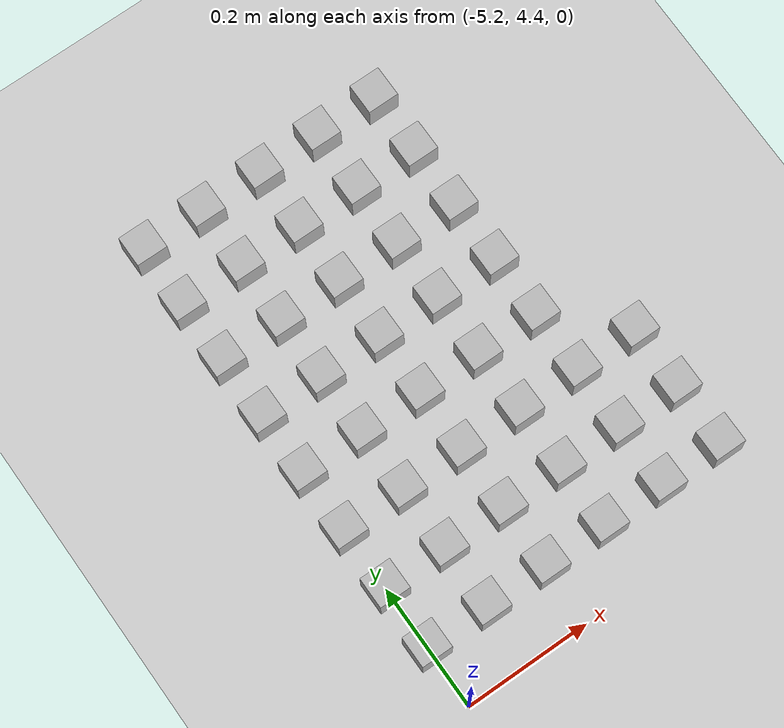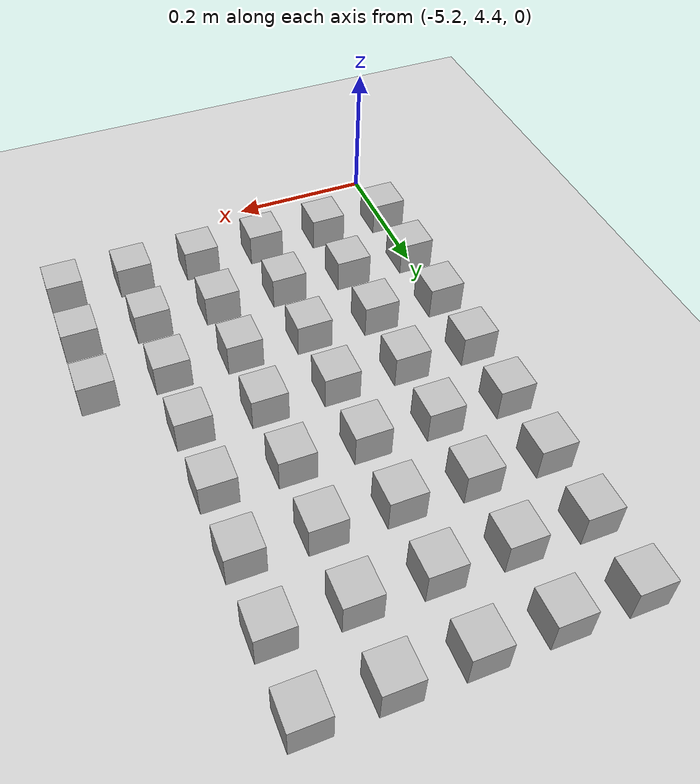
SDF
<sdf version="1.6">
 <world name="default">
  <model name="ground_plane">
   <static>1</static>
   <link name="link">
    <collision name="collision">
     <geometry><plane><normal>0 0 1</normal><size>100 100</size></plane></geometry>
     <surface><friction><ode><mu>100</mu><mu2>50</mu2></ode></friction></surface>
    </collision>
    <visual name="visual">
     <cast_shadows>0</cast_shadows>
     <geometry><plane><normal>0 0 1</normal><size>100 100</size></plane></geometry>
     <material>
      <script><uri>file://media/materials/scripts/gazebo.material</uri><name>Gazebo/Grey</name></script>
     </material>
    </visual>
   </link>
  </model>
  <model name="at0">
   <static>0</static>
   <link name="link">
    <inertial>
     <mass>0.01</mass>
     <inertia><ixx>4e-05</ixx><ixy>0</ixy><ixz>0</ixz><iyy>4e-05</iyy><iyz>0</iyz><izz>4e-05</izz></inertia>
    </inertial>
    <visual name="visual">
     <geometry><box><size>0.05 0.05 0.05</size></box></geometry>
     <material>
      <script>
       <uri>model://at0/materials/scripts</uri>
       <uri>model://at0/materials/textures</uri>
       <name>at0/Diffuse</name>
      </script>
     </material>
    </visual>
    <collision name="collision">
     <geometry><box><size>0.05 0.05 0.05</size></box></geometry>
     <surface><friction><ode><mu>0.8</mu><mu2>0.7</mu2></ode></friction></surface>
    </collision>
   </link>
   <pose>-5.2 4.5 0.025 0 -0 0</pose>
  </model>
  <model name="at1">
   <static>0</static>
   <link name="link">
    <inertial>
     <mass>0.01</mass>
     <inertia><ixx>4e-05</ixx><ixy>0</ixy><ixz>0</ixz><iyy>4e-05</iyy><iyz>0</iyz><izz>4e-05</izz></inertia>
    </inertial>
    <visual name="visual">
     <geometry><box><size>0.05 0.05 0.05</size></box></geometry>
     <material>
      <script>
       <uri>model://at0/materials/scripts</uri>
       <uri>model://at0/materials/textures</uri>
       <name>at0/Diffuse</name>
      </script>
     </material>
    </visual>
    <collision name="collision">
     <geometry><box><size>0.05 0.05 0.05</size></box></geometry>
     <surface><friction><ode><mu>0.8</mu><mu2>0.7</mu2></ode></friction></surface>
    </collision>
   </link>
   <pose>-5.1 4.5 0.025 0 -0 0</pose>
  </model>
  <model name="at2">
   <static>0</static>
   <link name="link">
    <inertial>
     <mass>0.01</mass>
     <inertia><ixx>4e-05</ixx><ixy>0</ixy><ixz>0</ixz><iyy>4e-05</iyy><iyz>0</iyz><izz>4e-05</izz></inertia>
    </inertial>
    <visual name="visual">
     <geometry><box><size>0.05 0.05 0.05</size></box></geometry>
     <material>
      <script>
       <uri>model://at0/materials/scripts</uri>
       <uri>model://at0/materials/textures</uri>
       <name>at0/Diffuse</name>
      </script>
     </material>
    </visual>
    <collision name="collision">
     <geometry><box><size>0.05 0.05 0.05</size></box></geometry>
     <surface><friction><ode><mu>0.8</mu><mu2>0.7</mu2></ode></friction></surface>
    </collision>
   </link>
   <pose>-5.0 4.5 0.025 0 -0 0</pose>
  </model>
  <model name="at3">
   <static>0</static>
   <link name="link">
    <inertial>
     <mass>0.01</mass>
     <inertia><ixx>4e-05</ixx><ixy>0</ixy><ixz>0</ixz><iyy>4e-05</iyy><iyz>0</iyz><izz>4e-05</izz></inertia>
    </inertial>
    <visual name="visual">
     <geometry><box><size>0.05 0.05 0.05</size></box></geometry>
     <material>
      <script>
       <uri>model://at0/materials/scripts</uri>
       <uri>model://at0/materials/textures</uri>
       <name>at0/Diffuse</name>
      </script>
     </material>
    </visual>
    <collision name="collision">
     <geometry><box><size>0.05 0.05 0.05</size></box></geometry>
     <surface><friction><ode><mu>0.8</mu><mu2>0.7</mu2></ode></friction></surface>
    </collision>
   </link>
   <pose>-4.9 4.5 0.025 0 -0 0</pose>
  </model>
  <model name="at4">
   <static>0</static>
   <link name="link">
    <inertial>
     <mass>0.01</mass>
     <inertia><ixx>4e-05</ixx><ixy>0</ixy><ixz>0</ixz><iyy>4e-05</iyy><iyz>0</iyz><izz>4e-05</izz></inertia>
    </inertial>
    <visual name="visual">
     <geometry><box><size>0.05 0.05 0.05</size></box></geometry>
     <material>
      <script>
       <uri>model://at0/materials/scripts</uri>
       <uri>model://at0/materials/textures</uri>
       <name>at0/Diffuse</name>
      </script>
     </material>
    </visual>
    <collision name="collision">
     <geometry><box><size>0.05 0.05 0.05</size></box></geometry>
     <surface><friction><ode><mu>0.8</mu><mu2>0.7</mu2></ode></friction></surface>
    </collision>
   </link>
   <pose>-4.8 4.5 0.025 0 -0 0</pose>
  </model>
  <model name="at5">
   <static>0</static>
   <link name="link">
    <inertial>
     <mass>0.01</mass>
     <inertia><ixx>4e-05</ixx><ixy>0</ixy><ixz>0</ixz><iyy>4e-05</iyy><iyz>0</iyz><izz>4e-05</izz></inertia>
    </inertial>
    <visual name="visual">
     <geometry><box><size>0.05 0.05 0.05</size></box></geometry>
     <material>
      <script>
       <uri>model://at0/materials/scripts</uri>
       <uri>model://at0/materials/textures</uri>
       <name>at0/Diffuse</name>
      </script>
     </material>
    </visual>
    <collision name="collision">
     <geometry><box><size>0.05 0.05 0.05</size></box></geometry>
     <surface><friction><ode><mu>0.8</mu><mu2>0.7</mu2></ode></friction></surface>
    </collision>
   </link>
   <pose>-4.7 4.5 0.025 0 -0 0</pose>
  </model>
  <model name="at8">
   <static>0</static>
   <link name="link">
    <inertial>
     <mass>0.01</mass>
     <inertia><ixx>4e-05</ixx><ixy>0</ixy><ixz>0</ixz><iyy>4e-05</iyy><iyz>0</iyz><izz>4e-05</izz></inertia>
    </inertial>
    <visual name="visual">
     <geometry><box><size>0.05 0.05 0.05</size></box></geometry>
     <material>
      <script>
       <uri>model://at0/materials/scripts</uri>
       <uri>model://at0/materials/textures</uri>
       <name>at0/Diffuse</name>
      </script>
     </material>
    </visual>
    <collision name="collision">
     <geometry><box><size>0.05 0.05 0.05</size></box></geometry>
     <surface><friction><ode><mu>0.8</mu><mu2>0.7</mu2></ode></friction></surface>
    </collision>
   </link>
   <pose>-5.2 4.6 0.025 0 -0 0</pose>
  </model>
  <model name="at9">
   <static>0</static>
   <link name="link">
    <inertial>
     <mass>0.01</mass>
     <inertia><ixx>4e-05</ixx><ixy>0</ixy><ixz>0</ixz><iyy>4e-05</iyy><iyz>0</iyz><izz>4e-05</izz></inertia>
    </inertial>
    <visual name="visual">
     <geometry><box><size>0.05 0.05 0.05</size></box></geometry>
     <material>
      <script>
       <uri>model://at0/materials/scripts</uri>
       <uri>model://at0/materials/textures</uri>
       <name>at0/Diffuse</name>
      </script>
     </material>
    </visual>
    <collision name="collision">
     <geometry><box><size>0.05 0.05 0.05</size></box></geometry>
     <surface><friction><ode><mu>0.8</mu><mu2>0.7</mu2></ode></friction></surface>
    </collision>
   </link>
   <pose>-5.1 4.6 0.025 0 -0 0</pose>
  </model>
  <model name="at10">
   <static>0</static>
   <link name="link">
    <inertial>
     <mass>0.01</mass>
     <inertia><ixx>4e-05</ixx><ixy>0</ixy><ixz>0</ixz><iyy>4e-05</iyy><iyz>0</iyz><izz>4e-05</izz></inertia>
    </inertial>
    <visual name="visual">
     <geometry><box><size>0.05 0.05 0.05</size></box></geometry>
     <material>
      <script>
       <uri>model://at0/materials/scripts</uri>
       <uri>model://at0/materials/textures</uri>
       <name>at0/Diffuse</name>
      </script>
     </material>
    </visual>
    <collision name="collision">
     <geometry><box><size>0.05 0.05 0.05</size></box></geometry>
     <surface><friction><ode><mu>0.8</mu><mu2>0.7</mu2></ode></friction></surface>
    </collision>
   </link>
   <pose>-5.0 4.6 0.025 0 -0 0</pose>
  </model>
  <model name="at11">
   <static>0</static>
   <link name="link">
    <inertial>
     <mass>0.01</mass>
     <inertia><ixx>4e-05</ixx><ixy>0</ixy><ixz>0</ixz><iyy>4e-05</iyy><iyz>0</iyz><izz>4e-05</izz></inertia>
    </inertial>
    <visual name="visual">
     <geometry><box><size>0.05 0.05 0.05</size></box></geometry>
     <material>
      <script>
       <uri>model://at0/materials/scripts</uri>
       <uri>model://at0/materials/textures</uri>
       <name>at0/Diffuse</name>
      </script>
     </material>
    </visual>
    <collision name="collision">
     <geometry><box><size>0.05 0.05 0.05</size></box></geometry>
     <surface><friction><ode><mu>0.8</mu><mu2>0.7</mu2></ode></friction></surface>
    </collision>
   </link>
   <pose>-4.9 4.6 0.025 0 -0 0</pose>
  </model>
  <model name="at12">
   <static>0</static>
   <link name="link">
    <inertial>
     <mass>0.01</mass>
     <inertia><ixx>4e-05</ixx><ixy>0</ixy><ixz>0</ixz><iyy>4e-05</iyy><iyz>0</iyz><izz>4e-05</izz></inertia>
    </inertial>
    <visual name="visual">
     <geometry><box><size>0.05 0.05 0.05</size></box></geometry>
     <material>
      <script>
       <uri>model://at0/materials/scripts</uri>
       <uri>model://at0/materials/textures</uri>
       <name>at0/Diffuse</name>
      </script>
     </material>
    </visual>
    <collision name="collision">
     <geometry><box><size>0.05 0.05 0.05</size></box></geometry>
     <surface><friction><ode><mu>0.8</mu><mu2>0.7</mu2></ode></friction></surface>
    </collision>
   </link>
   <pose>-4.8 4.6 0.025 0 -0 0</pose>
  </model>
  <model name="at13">
   <static>0</static>
   <link name="link">
    <inertial>
     <mass>0.01</mass>
     <inertia><ixx>4e-05</ixx><ixy>0</ixy><ixz>0</ixz><iyy>4e-05</iyy><iyz>0</iyz><izz>4e-05</izz></inertia>
    </inertial>
    <visual name="visual">
     <geometry><box><size>0.05 0.05 0.05</size></box></geometry>
     <material>
      <script>
       <uri>model://at0/materials/scripts</uri>
       <uri>model://at0/materials/textures</uri>
       <name>at0/Diffuse</name>
      </script>
     </material>
    </visual>
    <collision name="collision">
     <geometry><box><size>0.05 0.05 0.05</size></box></geometry>
     <surface><friction><ode><mu>0.8</mu><mu2>0.7</mu2></ode></friction></surface>
    </collision>
   </link>
   <pose>-4.7 4.6 0.025 0 -0 0</pose>
  </model>
  <model name="at16">
   <static>0</static>
   <link name="link">
    <inertial>
     <mass>0.01</mass>
     <inertia><ixx>4e-05</ixx><ixy>0</ixy><ixz>0</ixz><iyy>4e-05</iyy><iyz>0</iyz><izz>4e-05</izz></inertia>
    </inertial>
    <visual name="visual">
     <geometry><box><size>0.05 0.05 0.05</size></box></geometry>
     <material>
      <script>
       <uri>model://at0/materials/scripts</uri>
       <uri>model://at0/materials/textures</uri>
       <name>at0/Diffuse</name>
      </script>
     </material>
    </visual>
    <collision name="collision">
     <geometry><box><size>0.05 0.05 0.05</size></box></geometry>
     <surface><friction><ode><mu>0.8</mu><mu2>0.7</mu2></ode></friction></surface>
    </collision>
   </link>
   <pose>-5.2 4.7 0.025 0 -0 0</pose>
  </model>
  <model name="at17">
   <static>0</static>
   <link name="link">
    <inertial>
     <mass>0.01</mass>
     <inertia><ixx>4e-05</ixx><ixy>0</ixy><ixz>0</ixz><iyy>4e-05</iyy><iyz>0</iyz><izz>4e-05</izz></inertia>
    </inertial>
    <visual name="visual">
     <geometry><box><size>0.05 0.05 0.05</size></box></geometry>
     <material>
      <script>
       <uri>model://at0/materials/scripts</uri>
       <uri>model://at0/materials/textures</uri>
       <name>at0/Diffuse</name>
      </script>
     </material>
    </visual>
    <collision name="collision">
     <geometry><box><size>0.05 0.05 0.05</size></box></geometry>
     <surface><friction><ode><mu>0.8</mu><mu2>0.7</mu2></ode></friction></surface>
    </collision>
   </link>
   <pose>-5.1 4.7 0.025 0 -0 0</pose>
  </model>
  <model name="at18">
   <static>0</static>
   <link name="link">
    <inertial>
     <mass>0.01</mass>
     <inertia><ixx>4e-05</ixx><ixy>0</ixy><ixz>0</ixz><iyy>4e-05</iyy><iyz>0</iyz><izz>4e-05</izz></inertia>
    </inertial>
    <visual name="visual">
     <geometry><box><size>0.05 0.05 0.05</size></box></geometry>
     <material>
      <script>
       <uri>model://at0/materials/scripts</uri>
       <uri>model://at0/materials/textures</uri>
       <name>at0/Diffuse</name>
      </script>
     </material>
    </visual>
    <collision name="collision">
     <geometry><box><size>0.05 0.05 0.05</size></box></geometry>
     <surface><friction><ode><mu>0.8</mu><mu2>0.7</mu2></ode></friction></surface>
    </collision>
   </link>
   <pose>-5.0 4.7 0.025 0 -0 0</pose>
  </model>
  <model name="at19">
   <static>0</static>
   <link name="link">
    <inertial>
     <mass>0.01</mass>
     <inertia><ixx>4e-05</ixx><ixy>0</ixy><ixz>0</ixz><iyy>4e-05</iyy><iyz>0</iyz><izz>4e-05</izz></inertia>
    </inertial>
    <visual name="visual">
     <geometry><box><size>0.05 0.05 0.05</size></box></geometry>
     <material>
      <script>
       <uri>model://at0/materials/scripts</uri>
       <uri>model://at0/materials/textures</uri>
       <name>at0/Diffuse</name>
      </script>
     </material>
    </visual>
    <collision name="collision">
     <geometry><box><size>0.05 0.05 0.05</size></box></geometry>
     <surface><friction><ode><mu>0.8</mu><mu2>0.7</mu2></ode></friction></surface>
    </collision>
   </link>
   <pose>-4.9 4.7 0.025 0 -0 0</pose>
  </model>
  <model name="at20">
   <static>0</static>
   <link name="link">
    <inertial>
     <mass>0.01</mass>
     <inertia><ixx>4e-05</ixx><ixy>0</ixy><ixz>0</ixz><iyy>4e-05</iyy><iyz>0</iyz><izz>4e-05</izz></inertia>
    </inertial>
    <visual name="visual">
     <geometry><box><size>0.05 0.05 0.05</size></box></geometry>
     <material>
      <script>
       <uri>model://at0/materials/scripts</uri>
       <uri>model://at0/materials/textures</uri>
       <name>at0/Diffuse</name>
      </script>
     </material>
    </visual>
    <collision name="collision">
     <geometry><box><size>0.05 0.05 0.05</size></box></geometry>
     <surface><friction><ode><mu>0.8</mu><mu2>0.7</mu2></ode></friction></surface>
    </collision>
   </link>
   <pose>-4.8 4.7 0.025 0 -0 0</pose>
  </model>
  <model name="at21">
   <static>0</static>
   <link name="link">
    <inertial>
     <mass>0.01</mass>
     <inertia><ixx>4e-05</ixx><ixy>0</ixy><ixz>0</ixz><iyy>4e-05</iyy><iyz>0</iyz><izz>4e-05</izz></inertia>
    </inertial>
    <visual name="visual">
     <geometry><box><size>0.05 0.05 0.05</size></box></geometry>
     <material>
      <script>
       <uri>model://at0/materials/scripts</uri>
       <uri>model://at0/materials/textures</uri>
       <name>at0/Diffuse</name>
      </script>
     </material>
    </visual>
    <collision name="collision">
     <geometry><box><size>0.05 0.05 0.05</size></box></geometry>
     <surface><friction><ode><mu>0.8</mu><mu2>0.7</mu2></ode></friction></surface>
    </collision>
   </link>
   <pose>-4.7 4.7 0.025 0 -0 0</pose>
  </model>
  <model name="at24">
   <static>0</static>
   <link name="link">
    <inertial>
     <mass>0.01</mass>
     <inertia><ixx>4e-05</ixx><ixy>0</ixy><ixz>0</ixz><iyy>4e-05</iyy><iyz>0</iyz><izz>4e-05</izz></inertia>
    </inertial>
    <visual name="visual">
     <geometry><box><size>0.05 0.05 0.05</size></box></geometry>
     <material>
      <script>
       <uri>model://at0/materials/scripts</uri>
       <uri>model://at0/materials/textures</uri>
       <name>at0/Diffuse</name>
      </script>
     </material>
    </visual>
    <collision name="collision">
     <geometry><box><size>0.05 0.05 0.05</size></box></geometry>
     <surface><friction><ode><mu>0.8</mu><mu2>0.7</mu2></ode></friction></surface>
    </collision>
   </link>
   <pose>-5.2 4.8 0.025 0 -0 0</pose>
  </model>
  <model name="at25">
   <static>0</static>
   <link name="link">
    <inertial>
     <mass>0.01</mass>
     <inertia><ixx>4e-05</ixx><ixy>0</ixy><ixz>0</ixz><iyy>4e-05</iyy><iyz>0</iyz><izz>4e-05</izz></inertia>
    </inertial>
    <visual name="visual">
     <geometry><box><size>0.05 0.05 0.05</size></box></geometry>
     <material>
      <script>
       <uri>model://at0/materials/scripts</uri>
       <uri>model://at0/materials/textures</uri>
       <name>at0/Diffuse</name>
      </script>
     </material>
    </visual>
    <collision name="collision">
     <geometry><box><size>0.05 0.05 0.05</size></box></geometry>
     <surface><friction><ode><mu>0.8</mu><mu2>0.7</mu2></ode></friction></surface>
    </collision>
   </link>
   <pose>-5.1 4.8 0.025 0 -0 0</pose>
  </model>
  <model name="at26">
   <static>0</static>
   <link name="link">
    <inertial>
     <mass>0.01</mass>
     <inertia><ixx>4e-05</ixx><ixy>0</ixy><ixz>0</ixz><iyy>4e-05</iyy><iyz>0</iyz><izz>4e-05</izz></inertia>
    </inertial>
    <visual name="visual">
     <geometry><box><size>0.05 0.05 0.05</size></box></geometry>
     <material>
      <script>
       <uri>model://at0/materials/scripts</uri>
       <uri>model://at0/materials/textures</uri>
       <name>at0/Diffuse</name>
      </script>
     </material>
    </visual>
    <collision name="collision">
     <geometry><box><size>0.05 0.05 0.05</size></box></geometry>
     <surface><friction><ode><mu>0.8</mu><mu2>0.7</mu2></ode></friction></surface>
    </collision>
   </link>
   <pose>-5.0 4.8 0.025 0 -0 0</pose>
  </model>
  <model name="at27">
   <static>0</static>
   <link name="link">
    <inertial>
     <mass>0.01</mass>
     <inertia><ixx>4e-05</ixx><ixy>0</ixy><ixz>0</ixz><iyy>4e-05</iyy><iyz>0</iyz><izz>4e-05</izz></inertia>
    </inertial>
    <visual name="visual">
     <geometry><box><size>0.05 0.05 0.05</size></box></geometry>
     <material>
      <script>
       <uri>model://at0/materials/scripts</uri>
       <uri>model://at0/materials/textures</uri>
       <name>at0/Diffuse</name>
      </script>
     </material>
    </visual>
    <collision name="collision">
     <geometry><box><size>0.05 0.05 0.05</size></box></geometry>
     <surface><friction><ode><mu>0.8</mu><mu2>0.7</mu2></ode></friction></surface>
    </collision>
   </link>
   <pose>-4.9 4.8 0.025 0 -0 0</pose>
  </model>
  <model name="at28">
   <static>0</static>
   <link name="link">
    <inertial>
     <mass>0.01</mass>
     <inertia><ixx>4e-05</ixx><ixy>0</ixy><ixz>0</ixz><iyy>4e-05</iyy><iyz>0</iyz><izz>4e-05</izz></inertia>
    </inertial>
    <visual name="visual">
     <geometry><box><size>0.05 0.05 0.05</size></box></geometry>
     <material>
      <script>
       <uri>model://at0/materials/scripts</uri>
       <uri>model://at0/materials/textures</uri>
       <name>at0/Diffuse</name>
      </script>
     </material>
    </visual>
    <collision name="collision">
     <geometry><box><size>0.05 0.05 0.05</size></box></geometry>
     <surface><friction><ode><mu>0.8</mu><mu2>0.7</mu2></ode></friction></surface>
    </collision>
   </link>
   <pose>-4.8 4.8 0.025 0 -0 0</pose>
  </model>
  <model name="at32">
   <static>0</static>
   <link name="link">
    <inertial>
     <mass>0.01</mass>
     <inertia><ixx>4e-05</ixx><ixy>0</ixy><ixz>0</ixz><iyy>4e-05</iyy><iyz>0</iyz><izz>4e-05</izz></inertia>
    </inertial>
    <visual name="visual">
     <geometry><box><size>0.05 0.05 0.05</size></box></geometry>
     <material>
      <script>
       <uri>model://at0/materials/scripts</uri>
       <uri>model://at0/materials/textures</uri>
       <name>at0/Diffuse</name>
      </script>
     </material>
    </visual>
    <collision name="collision">
     <geometry><box><size>0.05 0.05 0.05</size></box></geometry>
     <surface><friction><ode><mu>0.8</mu><mu2>0.7</mu2></ode></friction></surface>
    </collision>
   </link>
   <pose>-5.2 4.9 0.025 0 -0 0</pose>
  </model>
  <model name="at33">
   <static>0</static>
   <link name="link">
    <inertial>
     <mass>0.01</mass>
     <inertia><ixx>4e-05</ixx><ixy>0</ixy><ixz>0</ixz><iyy>4e-05</iyy><iyz>0</iyz><izz>4e-05</izz></inertia>
    </inertial>
    <visual name="visual">
     <geometry><box><size>0.05 0.05 0.05</size></box></geometry>
     <material>
      <script>
       <uri>model://at0/materials/scripts</uri>
       <uri>model://at0/materials/textures</uri>
       <name>at0/Diffuse</name>
      </script>
     </material>
    </visual>
    <collision name="collision">
     <geometry><box><size>0.05 0.05 0.05</size></box></geometry>
     <surface><friction><ode><mu>0.8</mu><mu2>0.7</mu2></ode></friction></surface>
    </collision>
   </link>
   <pose>-5.1 4.9 0.025 0 -0 0</pose>
  </model>
  <model name="at34">
   <static>0</static>
   <link name="link">
    <inertial>
     <mass>0.01</mass>
     <inertia><ixx>4e-05</ixx><ixy>0</ixy><ixz>0</ixz><iyy>4e-05</iyy><iyz>0</iyz><izz>4e-05</izz></inertia>
    </inertial>
    <visual name="visual">
     <geometry><box><size>0.05 0.05 0.05</size></box></geometry>
     <material>
      <script>
       <uri>model://at0/materials/scripts</uri>
       <uri>model://at0/materials/textures</uri>
       <name>at0/Diffuse</name>
      </script>
     </material>
    </visual>
    <collision name="collision">
     <geometry><box><size>0.05 0.05 0.05</size></box></geometry>
     <surface><friction><ode><mu>0.8</mu><mu2>0.7</mu2></ode></friction></surface>
    </collision>
   </link>
   <pose>-5.0 4.9 0.025 0 -0 0</pose>
  </model>
  <model name="at35">
   <static>0</static>
   <link name="link">
    <inertial>
     <mass>0.01</mass>
     <inertia><ixx>4e-05</ixx><ixy>0</ixy><ixz>0</ixz><iyy>4e-05</iyy><iyz>0</iyz><izz>4e-05</izz></inertia>
    </inertial>
    <visual name="visual">
     <geometry><box><size>0.05 0.05 0.05</size></box></geometry>
     <material>
      <script>
       <uri>model://at0/materials/scripts</uri>
       <uri>model://at0/materials/textures</uri>
       <name>at0/Diffuse</name>
      </script>
     </material>
    </visual>
    <collision name="collision">
     <geometry><box><size>0.05 0.05 0.05</size></box></geometry>
     <surface><friction><ode><mu>0.8</mu><mu2>0.7</mu2></ode></friction></surface>
    </collision>
   </link>
   <pose>-4.9 4.9 0.025 0 -0 0</pose>
  </model>
  <model name="at36">
   <static>0</static>
   <link name="link">
    <inertial>
     <mass>0.01</mass>
     <inertia><ixx>4e-05</ixx><ixy>0</ixy><ixz>0</ixz><iyy>4e-05</iyy><iyz>0</iyz><izz>4e-05</izz></inertia>
    </inertial>
    <visual name="visual">
     <geometry><box><size>0.05 0.05 0.05</size></box></geometry>
     <material>
      <script>
       <uri>model://at0/materials/scripts</uri>
       <uri>model://at0/materials/textures</uri>
       <name>at0/Diffuse</name>
      </script>
     </material>
    </visual>
    <collision name="collision">
     <geometry><box><size>0.05 0.05 0.05</size></box></geometry>
     <surface><friction><ode><mu>0.8</mu><mu2>0.7</mu2></ode></friction></surface>
    </collision>
   </link>
   <pose>-4.8 4.9 0.025 0 -0 0</pose>
  </model>
  <model name="at40">
   <static>0</static>
   <link name="link">
    <inertial>
     <mass>0.01</mass>
     <inertia><ixx>4e-05</ixx><ixy>0</ixy><ixz>0</ixz><iyy>4e-05</iyy><iyz>0</iyz><izz>4e-05</izz></inertia>
    </inertial>
    <visual name="visual">
     <geometry><box><size>0.05 0.05 0.05</size></box></geometry>
     <material>
      <script>
       <uri>model://at0/materials/scripts</uri>
       <uri>model://at0/materials/textures</uri>
       <name>at0/Diffuse</name>
      </script>
     </material>
    </visual>
    <collision name="collision">
     <geometry><box><size>0.05 0.05 0.05</size></box></geometry>
     <surface><friction><ode><mu>0.8</mu><mu2>0.7</mu2></ode></friction></surface>
    </collision>
   </link>
   <pose>-5.2 5.0 0.025 0 -0 0</pose>
  </model>
  <model name="at41">
   <static>0</static>
   <link name="link">
    <inertial>
     <mass>0.01</mass>
     <inertia><ixx>4e-05</ixx><ixy>0</ixy><ixz>0</ixz><iyy>4e-05</iyy><iyz>0</iyz><izz>4e-05</izz></inertia>
    </inertial>
    <visual name="visual">
     <geometry><box><size>0.05 0.05 0.05</size></box></geometry>
     <material>
      <script>
       <uri>model://at0/materials/scripts</uri>
       <uri>model://at0/materials/textures</uri>
       <name>at0/Diffuse</name>
      </script>
     </material>
    </visual>
    <collision name="collision">
     <geometry><box><size>0.05 0.05 0.05</size></box></geometry>
     <surface><friction><ode><mu>0.8</mu><mu2>0.7</mu2></ode></friction></surface>
    </collision>
   </link>
   <pose>-5.1 5.0 0.025 0 -0 0</pose>
  </model>
  <model name="at42">
   <static>0</static>
   <link name="link">
    <inertial>
     <mass>0.01</mass>
     <inertia><ixx>4e-05</ixx><ixy>0</ixy><ixz>0</ixz><iyy>4e-05</iyy><iyz>0</iyz><izz>4e-05</izz></inertia>
    </inertial>
    <visual name="visual">
     <geometry><box><size>0.05 0.05 0.05</size></box></geometry>
     <material>
      <script>
       <uri>model://at0/materials/scripts</uri>
       <uri>model://at0/materials/textures</uri>
       <name>at0/Diffuse</name>
      </script>
     </material>
    </visual>
    <collision name="collision">
     <geometry><box><size>0.05 0.05 0.05</size></box></geometry>
     <surface><friction><ode><mu>0.8</mu><mu2>0.7</mu2></ode></friction></surface>
    </collision>
   </link>
   <pose>-5.0 5.0 0.025 0 -0 0</pose>
  </model>
  <model name="at43">
   <static>0</static>
   <link name="link">
    <inertial>
     <mass>0.01</mass>
     <inertia><ixx>4e-05</ixx><ixy>0</ixy><ixz>0</ixz><iyy>4e-05</iyy><iyz>0</iyz><izz>4e-05</izz></inertia>
    </inertial>
    <visual name="visual">
     <geometry><box><size>0.05 0.05 0.05</size></box></geometry>
     <material>
      <script>
       <uri>model://at0/materials/scripts</uri>
       <uri>model://at0/materials/textures</uri>
       <name>at0/Diffuse</name>
      </script>
     </material>
    </visual>
    <collision name="collision">
     <geometry><box><size>0.05 0.05 0.05</size></box></geometry>
     <surface><friction><ode><mu>0.8</mu><mu2>0.7</mu2></ode></friction></surface>
    </collision>
   </link>
   <pose>-4.9 5.0 0.025 0 -0 0</pose>
  </model>
  <model name="at44">
   <static>0</static>
   <link name="link">
    <inertial>
     <mass>0.01</mass>
     <inertia><ixx>4e-05</ixx><ixy>0</ixy><ixz>0</ixz><iyy>4e-05</iyy><iyz>0</iyz><izz>4e-05</izz></inertia>
    </inertial>
    <visual name="visual">
     <geometry><box><size>0.05 0.05 0.05</size></box></geometry>
     <material>
      <script>
       <uri>model://at0/materials/scripts</uri>
       <uri>model://at0/materials/textures</uri>
       <name>at0/Diffuse</name>
      </script>
     </material>
    </visual>
    <collision name="collision">
     <geometry><box><size>0.05 0.05 0.05</size></box></geometry>
     <surface><friction><ode><mu>0.8</mu><mu2>0.7</mu2></ode></friction></surface>
    </collision>
   </link>
   <pose>-4.8 5.0 0.025 0 -0 0</pose>
  </model>
  <model name="at48">
   <static>0</static>
   <link name="link">
    <inertial>
     <mass>0.01</mass>
     <inertia><ixx>4e-05</ixx><ixy>0</ixy><ixz>0</ixz><iyy>4e-05</iyy><iyz>0</iyz><izz>4e-05</izz></inertia>
    </inertial>
    <visual name="visual">
     <geometry><box><size>0.05 0.05 0.05</size></box></geometry>
     <material>
      <script>
       <uri>model://at0/materials/scripts</uri>
       <uri>model://at0/materials/textures</uri>
       <name>at0/Diffuse</name>
      </script>
     </material>
    </visual>
    <collision name="collision">
     <geometry><box><size>0.05 0.05 0.05</size></box></geometry>
     <surface><friction><ode><mu>0.8</mu><mu2>0.7</mu2></ode></friction></surface>
    </collision>
   </link>
   <pose>-5.2 5.1 0.025 0 -0 0</pose>
  </model>
  <model name="at49">
   <static>0</static>
   <link name="link">
    <inertial>
     <mass>0.01</mass>
     <inertia><ixx>4e-05</ixx><ixy>0</ixy><ixz>0</ixz><iyy>4e-05</iyy><iyz>0</iyz><izz>4e-05</izz></inertia>
    </inertial>
    <visual name="visual">
     <geometry><box><size>0.05 0.05 0.05</size></box></geometry>
     <material>
      <script>
       <uri>model://at0/materials/scripts</uri>
       <uri>model://at0/materials/textures</uri>
       <name>at0/Diffuse</name>
      </script>
     </material>
    </visual>
    <collision name="collision">
     <geometry><box><size>0.05 0.05 0.05</size></box></geometry>
     <surface><friction><ode><mu>0.8</mu><mu2>0.7</mu2></ode></friction></surface>
    </collision>
   </link>
   <pose>-5.1 5.1 0.025 0 -0 0</pose>
  </model>
  <model name="at50">
   <static>0</static>
   <link name="link">
    <inertial>
     <mass>0.01</mass>
     <inertia><ixx>4e-05</ixx><ixy>0</ixy><ixz>0</ixz><iyy>4e-05</iyy><iyz>0</iyz><izz>4e-05</izz></inertia>
    </inertial>
    <visual name="visual">
     <geometry><box><size>0.05 0.05 0.05</size></box></geometry>
     <material>
      <script>
       <uri>model://at0/materials/scripts</uri>
       <uri>model://at0/materials/textures</uri>
       <name>at0/Diffuse</name>
      </script>
     </material>
    </visual>
    <collision name="collision">
     <geometry><box><size>0.05 0.05 0.05</size></box></geometry>
     <surface><friction><ode><mu>0.8</mu><mu2>0.7</mu2></ode></friction></surface>
    </collision>
   </link>
   <pose>-5.0 5.1 0.025 0 -0 0</pose>
  </model>
  <model name="at51">
   <static>0</static>
   <link name="link">
    <inertial>
     <mass>0.01</mass>
     <inertia><ixx>4e-05</ixx><ixy>0</ixy><ixz>0</ixz><iyy>4e-05</iyy><iyz>0</iyz><izz>4e-05</izz></inertia>
    </inertial>
    <visual name="visual">
     <geometry><box><size>0.05 0.05 0.05</size></box></geometry>
     <material>
      <script>
       <uri>model://at0/materials/scripts</uri>
       <uri>model://at0/materials/textures</uri>
       <name>at0/Diffuse</name>
      </script>
     </material>
    </visual>
    <collision name="collision">
     <geometry><box><size>0.05 0.05 0.05</size></box></geometry>
     <surface><friction><ode><mu>0.8</mu><mu2>0.7</mu2></ode></friction></surface>
    </collision>
   </link>
   <pose>-4.9 5.1 0.025 0 -0 0</pose>
  </model>
  <model name="at52">
   <static>0</static>
   <link name="link">
    <inertial>
     <mass>0.01</mass>
     <inertia><ixx>4e-05</ixx><ixy>0</ixy><ixz>0</ixz><iyy>4e-05</iyy><iyz>0</iyz><izz>4e-05</izz></inertia>
    </inertial>
    <visual name="visual">
     <geometry><box><size>0.05 0.05 0.05</size></box></geometry>
     <material>
      <script>
       <uri>model://at0/materials/scripts</uri>
       <uri>model://at0/materials/textures</uri>
       <name>at0/Diffuse</name>
      </script>
     </material>
    </visual>
    <collision name="collision">
     <geometry><box><size>0.05 0.05 0.05</size></box></geometry>
     <surface><friction><ode><mu>0.8</mu><mu2>0.7</mu2></ode></friction></surface>
    </collision>
   </link>
   <pose>-4.8 5.1 0.025 0 -0 0</pose>
  </model>
  <model name="at56">
   <static>0</static>
   <link name="link">
    <inertial>
     <mass>0.01</mass>
     <inertia><ixx>4e-05</ixx><ixy>0</ixy><ixz>0</ixz><iyy>4e-05</iyy><iyz>0</iyz><izz>4e-05</izz></inertia>
    </inertial>
    <visual name="visual">
     <geometry><box><size>0.05 0.05 0.05</size></box></geometry>
     <material>
      <script>
       <uri>model://at0/materials/scripts</uri>
       <uri>model://at0/materials/textures</uri>
       <name>at0/Diffuse</name>
      </script>
     </material>
    </visual>
    <collision name="collision">
     <geometry><box><size>0.05 0.05 0.05</size></box></geometry>
     <surface><friction><ode><mu>0.8</mu><mu2>0.7</mu2></ode></friction></surface>
    </collision>
   </link>
   <pose>-5.2 5.2 0.025 0 -0 0</pose>
  </model>
  <model name="at57">
   <static>0</static>
   <link name="link">
    <inertial>
     <mass>0.01</mass>
     <inertia><ixx>4e-05</ixx><ixy>0</ixy><ixz>0</ixz><iyy>4e-05</iyy><iyz>0</iyz><izz>4e-05</izz></inertia>
    </inertial>
    <visual name="visual">
     <geometry><box><size>0.05 0.05 0.05</size></box></geometry>
     <material>
      <script>
       <uri>model://at0/materials/scripts</uri>
       <uri>model://at0/materials/textures</uri>
       <name>at0/Diffuse</name>
      </script>
     </material>
    </visual>
    <collision name="collision">
     <geometry><box><size>0.05 0.05 0.05</size></box></geometry>
     <surface><friction><ode><mu>0.8</mu><mu2>0.7</mu2></ode></friction></surface>
    </collision>
   </link>
   <pose>-5.1 5.2 0.025 0 -0 0</pose>
  </model>
  <model name="at58">
   <static>0</static>
   <link name="link">
    <inertial>
     <mass>0.01</mass>
     <inertia><ixx>4e-05</ixx><ixy>0</ixy><ixz>0</ixz><iyy>4e-05</iyy><iyz>0</iyz><izz>4e-05</izz></inertia>
    </inertial>
    <visual name="visual">
     <geometry><box><size>0.05 0.05 0.05</size></box></geometry>
     <material>
      <script>
       <uri>model://at0/materials/scripts</uri>
       <uri>model://at0/materials/textures</uri>
       <name>at0/Diffuse</name>
      </script>
     </material>
    </visual>
    <collision name="collision">
     <geometry><box><size>0.05 0.05 0.05</size></box></geometry>
     <surface><friction><ode><mu>0.8</mu><mu2>0.7</mu2></ode></friction></surface>
    </collision>
   </link>
   <pose>-5.0 5.2 0.025 0 -0 0</pose>
  </model>
  <model name="at59">
   <static>0</static>
   <link name="link">
    <inertial>
     <mass>0.01</mass>
     <inertia><ixx>4e-05</ixx><ixy>0</ixy><ixz>0</ixz><iyy>4e-05</iyy><iyz>0</iyz><izz>4e-05</izz></inertia>
    </inertial>
    <visual name="visual">
     <geometry><box><size>0.05 0.05 0.05</size></box></geometry>
     <material>
      <script>
       <uri>model://at0/materials/scripts</uri>
       <uri>model://at0/materials/textures</uri>
       <name>at0/Diffuse</name>
      </script>
     </material>
    </visual>
    <collision name="collision">
     <geometry><box><size>0.05 0.05 0.05</size></box></geometry>
     <surface><friction><ode><mu>0.8</mu><mu2>0.7</mu2></ode></friction></surface>
    </collision>
   </link>
   <pose>-4.9 5.2 0.025 0 -0 0</pose>
  </model>
  <model name="at60">
   <static>0</static>
   <link name="link">
    <inertial>
     <mass>0.01</mass>
     <inertia><ixx>4e-05</ixx><ixy>0</ixy><ixz>0</ixz><iyy>4e-05</iyy><iyz>0</iyz><izz>4e-05</izz></inertia>
    </inertial>
    <visual name="visual">
     <geometry><box><size>0.05 0.05 0.05</size></box></geometry>
     <material>
      <script>
       <uri>model://at0/materials/scripts</uri>
       <uri>model://at0/materials/textures</uri>
       <name>at0/Diffuse</name>
      </script>
     </material>
    </visual>
    <collision name="collision">
     <geometry><box><size>0.05 0.05 0.05</size></box></geometry>
     <surface><friction><ode><mu>0.8</mu><mu2>0.7</mu2></ode></friction></surface>
    </collision>
   </link>
   <pose>-4.8 5.2 0.025 0 -0 0</pose>
  </model>
 </world>
</sdf>
